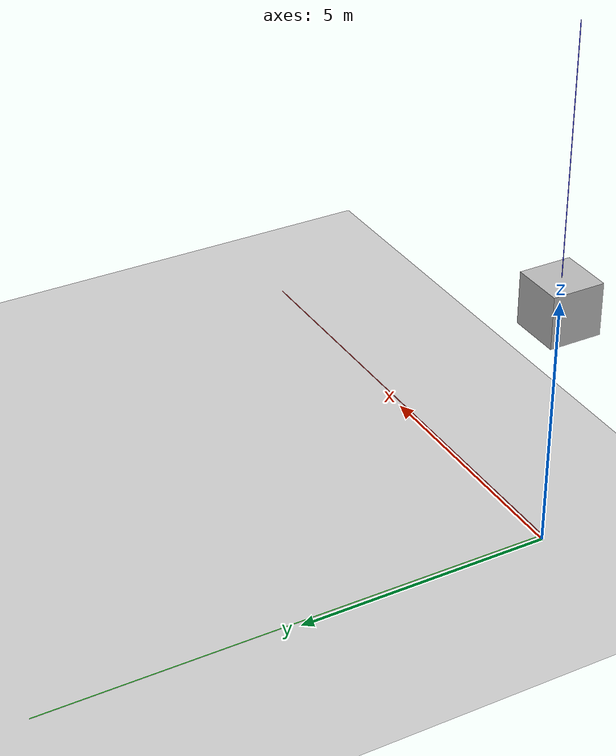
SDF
<?xml version="1.0" ?>
<sdf version="1.9">
  <world name="test_imu">
    <physics name="1ms" type="ignore">
      <max_step_size>0.001</max_step_size>
      <real_time_factor>1.0</real_time_factor>
    </physics>

    <plugin filename="gz-sim-physics-system"
      name="gz::sim::systems::Physics">
    </plugin>
    <plugin
      filename="gz-sim-sensors-system"
      name="gz::sim::systems::Sensors">
      <render_engine>ogre2</render_engine>
    </plugin>
    <plugin filename="gz-sim-user-commands-system"
      name="gz::sim::systems::UserCommands">
    </plugin>
    <plugin filename="gz-sim-scene-broadcaster-system"
      name="gz::sim::systems::SceneBroadcaster">
    </plugin>
    <plugin filename="gz-sim-imu-system"
      name="gz::sim::systems::Imu">
    </plugin>

    <plugin filename="gz-sim-air-pressure-system"
	name="gz::sim::systems::AirPressure">
    </plugin>

    <scene>
      <ambient>1.0 1.0 1.0</ambient>
      <background>0.8 0.8 0.8</background>
      <sky></sky>
    </scene>

    <spherical_coordinates>
      <latitude_deg>-35.363262</latitude_deg>
      <longitude_deg>149.165237</longitude_deg>
      <elevation>584</elevation>
      <heading_deg>0</heading_deg>
      <surface_model>EARTH_WGS84</surface_model>
    </spherical_coordinates>

    <light type="directional" name="sun">
      <cast_shadows>true</cast_shadows>
      <pose>0 0 10 0 0 0</pose>
      <diffuse>0.8 0.8 0.8 1</diffuse>
      <specular>0.8 0.8 0.8 1</specular>
      <attenuation>
        <range>1000</range>
        <constant>0.9</constant>
        <linear>0.01</linear>
        <quadratic>0.001</quadratic>
      </attenuation>
      <direction>-0.5 0.1 -0.9</direction>
    </light>

    <model name="axes">
      <static>1</static>
      <link name="link">
        <visual name="r">
          <cast_shadows>0</cast_shadows>
          <pose>5 0 0.1 0 0 0</pose>
          <geometry>
            <box>
              <size>10 0.01 0.01</size>
            </box>
          </geometry>
          <material>
            <ambient>1 0 0 0.8</ambient>
            <diffuse>1 0 0 0.8</diffuse>
            <emissive>1 0 0 0.8</emissive>
            <specular>0.5 0.5 0.5 0.8</specular>
          </material>
        </visual>
        <visual name="g">
          <cast_shadows>0</cast_shadows>
          <pose>0 5 0.1 0 0 0</pose>
          <geometry>
            <box>
              <size>0.01 10 0.01</size>
            </box>
          </geometry>
          <material>
            <ambient>0 1 0 0.8</ambient>
            <diffuse>0 1 0 0.8</diffuse>
            <emissive>0 1 0 0.8</emissive>
            <specular>0.5 0.5 0.5 0.8</specular>
          </material>
        </visual>
        <visual name="b">
          <cast_shadows>0</cast_shadows>
          <pose>0 0 5.1 0 0 0</pose>
          <geometry>
            <box>
              <size>0.01 0.01 10</size>
            </box>
          </geometry>
          <material>
            <ambient>0 0 1 0.8</ambient>
            <diffuse>0 0 1 0.8</diffuse>
            <emissive>0 0 1 0.8</emissive>
            <specular>0.5 0.5 0.5 0.8</specular>
          </material>
        </visual>
      </link>
    </model>

	<model name="testimu_model">
		<static>false</static>
		<link name="anchor_link">
			<pose>0 0 0 0 0 0</pose>
		</link>

		<link name="imu_link">
			<pose>0 0 5 0 0 0</pose>
			<collision name="im_coll">
				<geometry>
					<box>
						<size>1 1 1</size>
					</box>
				</geometry>
			</collision>
			<inertial>
				<mass>1</mass>
				<inertia>
					<ixx>0.16</ixx>
					<iyy>0.16</iyy>
					<izz>0.16</izz>
				</inertia>
			</inertial>
			<visual name="im_visual">
				<geometry>
					<box>
						<size>1 1 1</size>
					</box>
				</geometry>
			</visual>
			<sensor name="imu_sensor_test" type="imu">
				<pose>0 0 0 0 0 0</pose>
				<always_on>1</always_on>
				<update_rate>1000.0</update_rate>
			</sensor>
		</link>

		<joint name="im_joint" type="ball">
			<parent>anchor_link</parent>
			<child>imu_link</child>
			<pose>0 0 0 0 0 0</pose>
		</joint>

		<joint name="worldfixed" type="fixed">
			<parent>world</parent>
			<child>anchor_link</child>
		</joint>
	</model>

	<model name="ground">
		<static>true</static>
  <link name="ground_link">
    <collision name="ground_collision">
      <geometry>
			<plane>
				<normal>0 0 1</normal>
				<size> 100 100 </size>
			</plane>
      </geometry>
    </collision>
    <visual name="ground_visual">
		<geometry>
			<plane>
				<normal>0 0 1</normal>
				<size> 100 100 </size>
			</plane>
      </geometry>
			  <material>
				<script>
				  <uri>file://media/materials/scripts/gazebo.material</uri>
				  <name>Gazebo/Grey</name>
				</script>
			  </material>
    </visual>
  </link>
	</model>

  </world>
</sdf>
